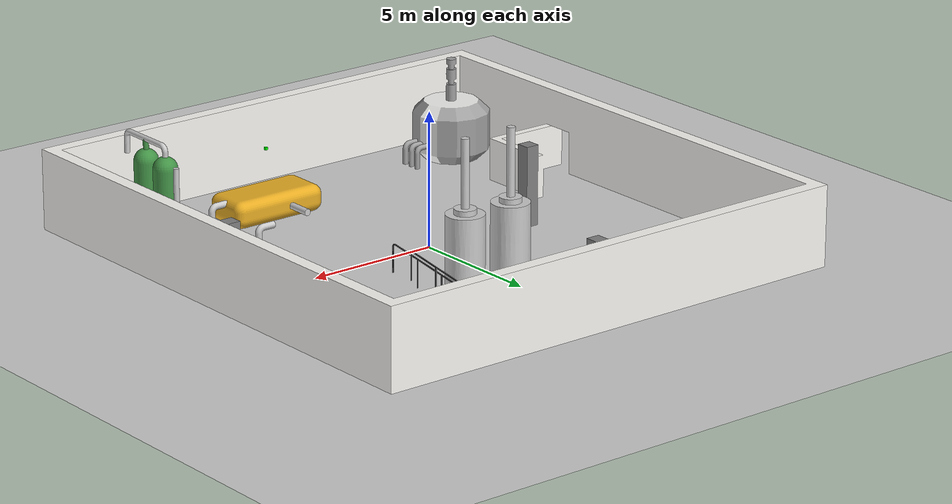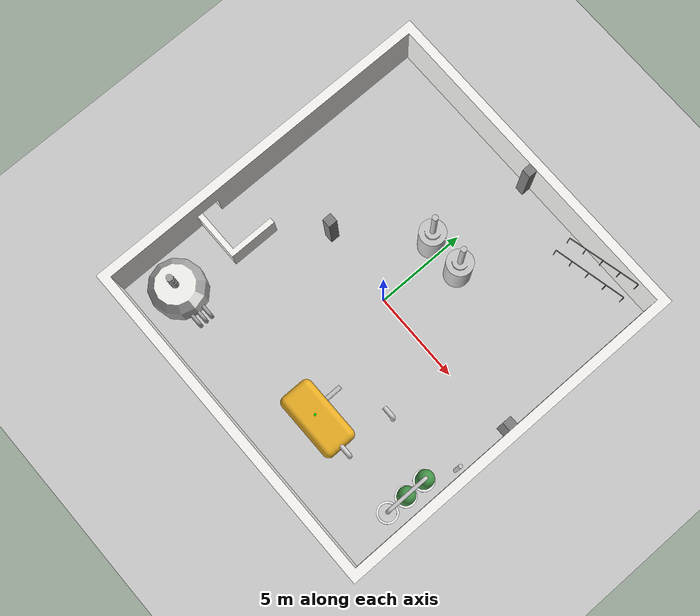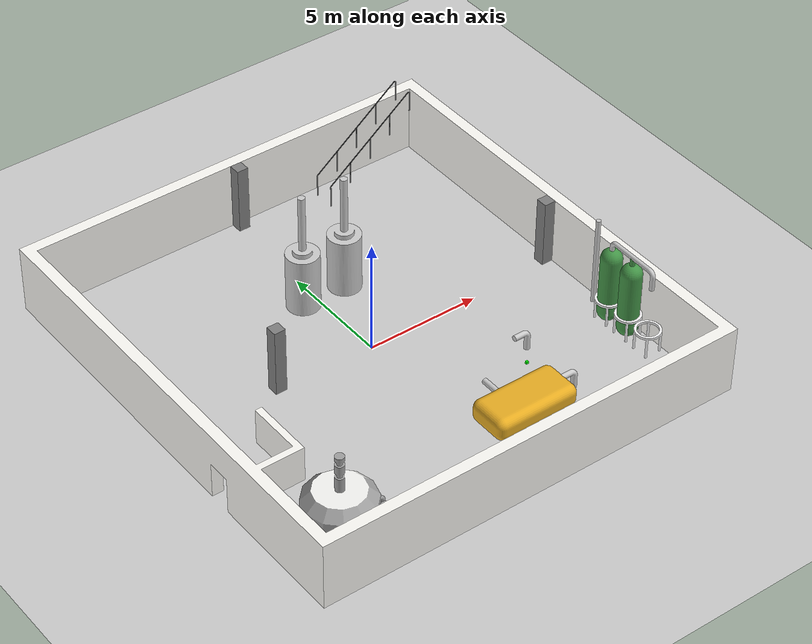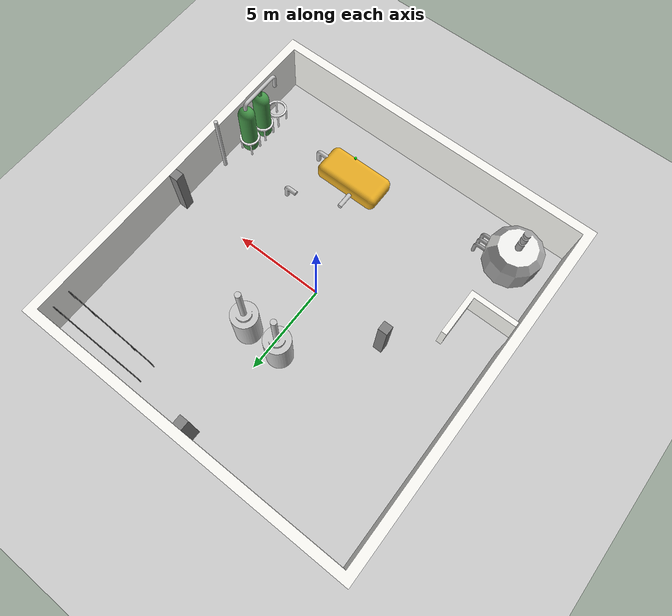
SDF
<sdf version="1.6">
 <world name="default">
  <light name="sun" type="directional">
   <cast_shadows>0</cast_shadows>
   <pose>0 0 10 0 -0 0</pose>
   <diffuse>0.8 0.8 0.8 1</diffuse>
   <specular>0.2 0.2 0.2 1</specular>
   <attenuation>
    <range>1000</range>
    <constant>0.9</constant>
    <linear>0.01</linear>
    <quadratic>0.001</quadratic>
   </attenuation>
   <direction>-0.5 0.1 -0.9</direction>
  </light>
  <include><uri>model://ground_plane</uri></include>
  <gravity>0 0 -9.8</gravity>
  <magnetic_field>6e-06 2.3e-05 -4.2e-05</magnetic_field>
  <atmosphere type="adiabatic"/>
  <physics default="0" name="default_physics" type="ode">
   <max_step_size>0.001</max_step_size>
   <real_time_factor>1</real_time_factor>
   <real_time_update_rate>1000</real_time_update_rate>
  </physics>
  <scene><ambient>0.4 0.4 0.4 1</ambient><background>0.7 0.7 0.7 1</background><shadows>0</shadows></scene>
  <spherical_coordinates>
   <surface_model>EARTH_WGS84</surface_model>
   <latitude_deg>0</latitude_deg>
   <longitude_deg>0</longitude_deg>
   <elevation>0</elevation>
   <heading_deg>0</heading_deg>
  </spherical_coordinates>
  <plugin name="radiation_virtual_sensor" filename="libradiation_virtual_sensor.so">
   <debug>false</debug>
   <air_attenuation_coeff>0.001</air_attenuation_coeff>
  </plugin>
  <model name="radiation_obstacle_walls_boratedConcrete">
   <pose>0 0 1.5 0 0 0</pose>
   <static>true</static>
   <link name="link_">
    <collision name="collision_walls_boratedConcrete">
     <geometry><mesh><uri>model://reactor_room/models/walls_boratedConcrete.dae</uri></mesh></geometry>
    </collision>
    <visual name="visual_walls_boratedConcrete">
     <geometry><mesh><uri>model://reactor_room/models/walls_boratedConcrete.dae</uri></mesh></geometry>
    </visual>
   </link>
   <plugin name="obstacle_plugin" filename="libradiation_obstacle_plugin.so">
    <material_type>boratedConcrete</material_type>
   </plugin>
  </model>
  <model name="radiation_obstacle_tankSet4_stainlessSteel_1">
   <pose>-0.60 3.70 2.6831 0 0 0</pose>
   <static>true</static>
   <link name="link_">
    <collision name="collision_tankSet4_stainlessSteel_1">
     <geometry><mesh><uri>model://reactor_room/models/tankSet4_stainlessSteel_1.dae</uri></mesh></geometry>
    </collision>
    <visual name="visual_tankSet4_stainlessSteel_1">
     <geometry><mesh><uri>model://reactor_room/models/tankSet4_stainlessSteel_1.dae</uri></mesh></geometry>
    </visual>
   </link>
   <plugin name="obstacle_plugin" filename="libradiation_obstacle_plugin.so">
    <material_type>none</material_type>
   </plugin>
  </model>
  <model name="radiation_source_tankSet4_stainlessSteel_1">
   <pose>-0.60 3.70 0.5 0 0 0</pose>
   <static>true</static>
   <link name="link_radiation_source_tankSet4_stainlessSteel_1">
    <visual name="visual_radiation_source_tankSet4_stainlessSteel_1_0">
     <geometry><box><size>0.1 0.1 0.1</size></box></geometry>
     <material><ambient>1 0.0  0 1.0</ambient><diffuse>1 0.0  0 1.0</diffuse></material>
    </visual>
    <visual name="visual_radiation_source_tankSet4_stainlessSteel_1_1">
     <pose>0 0 2.0 0 0 0</pose>
     <geometry><box><size>0.1 0.1 0.1</size></box></geometry>
     <material><ambient>0 1.0  0 1.0</ambient><diffuse>0 1.0  0 1.0</diffuse></material>
    </visual>
   </link>
   <plugin name="radiation_source_plugin" filename="libradiation_source_plugin.so">
    <initial_intensity>500.0</initial_intensity>
    <radius>0.1</radius>
   </plugin>
  </model>
  <model name="radiation_obstacle_tankSet4_stainlessSteel_2">
   <pose>1.4 3.7 2.6831 0 0 0</pose>
   <static>true</static>
   <link name="link_">
    <collision name="collision_tankSet4_stainlessSteel_2">
     <geometry><mesh><uri>model://reactor_room/models/tankSet4_stainlessSteel_2.dae</uri></mesh></geometry>
    </collision>
    <visual name="visual_tankSet4_stainlessSteel_2">
     <geometry><mesh><uri>model://reactor_room/models/tankSet4_stainlessSteel_2.dae</uri></mesh></geometry>
    </visual>
   </link>
   <plugin name="obstacle_plugin" filename="libradiation_obstacle_plugin.so">
    <material_type>none</material_type>
   </plugin>
  </model>
  <model name="radiation_source_tankSet4_stainlessSteel_2">
   <pose>1.4 3.7 0.5 0 0 0</pose>
   <static>true</static>
   <link name="link_radiation_source_tankSet4_stainlessSteel_2">
    <visual name="visual_radiation_source_tankSet4_stainlessSteel_2_0">
     <geometry><box><size>0.1 0.1 0.1</size></box></geometry>
     <material><ambient>1 0.0  0 1.0</ambient><diffuse>1 0.0  0 1.0</diffuse></material>
    </visual>
    <visual name="visual_radiation_source_tankSet4_stainlessSteel_2_1">
     <pose>0 0 2.0 0 0 0</pose>
     <geometry><box><size>0.1 0.1 0.1</size></box></geometry>
     <material><ambient>0 1.0  0 1.0</ambient><diffuse>0 1.0  0 1.0</diffuse></material>
    </visual>
   </link>
   <plugin name="radiation_source_plugin" filename="libradiation_source_plugin.so">
    <initial_intensity>500.0</initial_intensity>
    <radius>0.1</radius>
   </plugin>
  </model>
  <model name="StairsHandrail_aluminium_1">
   <pose>6.3415 8.9706 2.7726 0 0 0</pose>
   <static>true</static>
   <link name="link_">
    <collision name="collision_StairsHandrail_aluminium_1">
     <geometry><mesh><uri>model://reactor_room/models/StairsHandrail_aluminium_1.dae</uri></mesh></geometry>
    </collision>
    <visual name="visual_StairsHandrail_aluminium_1">
     <geometry><mesh><uri>model://reactor_room/models/StairsHandrail_aluminium_1.dae</uri></mesh></geometry>
    </visual>
   </link>
  </model>
  <model name="StairsHandrail_aluminium_2">
   <pose>6.3415 8.0306 2.7726 0 0 0</pose>
   <static>true</static>
   <link name="link_">
    <collision name="collision_StairsHandrail_aluminium_2">
     <geometry><mesh><uri>model://reactor_room/models/StairsHandrail_aluminium_2.dae</uri></mesh></geometry>
    </collision>
    <visual name="visual_StairsHandrail_aluminium_2">
     <geometry><mesh><uri>model://reactor_room/models/StairsHandrail_aluminium_2.dae</uri></mesh></geometry>
    </visual>
   </link>
  </model>
  <model name="radiation_obstacle_tankSet2_stainlessSteel">
   <pose>-5.6383 -7.3995 1.9 0 0 0</pose>
   <static>true</static>
   <link name="link_">
    <collision name="collision_tankSet2_stainlessSteel">
     <geometry><mesh><uri>model://reactor_room/models/tankSet2_stainlessSteel.dae</uri></mesh></geometry>
    </collision>
    <visual name="visual_tankSet2_stainlessSteel">
     <geometry><mesh><uri>model://reactor_room/models/tankSet2_stainlessSteel.dae</uri></mesh></geometry>
    </visual>
   </link>
   <plugin name="obstacle_plugin" filename="libradiation_obstacle_plugin.so">
    <material_type>stainlessSteel</material_type>
   </plugin>
  </model>
  <model name="radiation_obstacle_verticalPipeSet_stainlessSteel_3">
   <pose>8.7 -2.9 2 0 0 0</pose>
   <static>true</static>
   <link name="link_">
    <collision name="collision_verticalPipeSet_stainlessSteel_3">
     <geometry><mesh><uri>model://reactor_room/models/verticalPipeSet_stainlessSteel_3.dae</uri></mesh></geometry>
    </collision>
    <visual name="visual_verticalPipeSet_stainlessSteel_3">
     <geometry><mesh><uri>model://reactor_room/models/verticalPipeSet_stainlessSteel_3.dae</uri></mesh></geometry>
    </visual>
   </link>
   <plugin name="obstacle_plugin" filename="libradiation_obstacle_plugin.so">
    <material_type>stainlessSteel</material_type>
   </plugin>
  </model>
  <model name="radiation_obstacle_tankSet1_stainlessSteel_2">
   <pose>2.4013 -6.35 0.5 0 0 0</pose>
   <static>true</static>
   <link name="link_">
    <collision name="collision_tankSet1_stainlessSteel_2">
     <geometry><mesh><uri>model://reactor_room/models/tankSet1_stainlessSteel_2.dae</uri></mesh></geometry>
    </collision>
    <visual name="visual_tankSet1_stainlessSteel_2">
     <geometry><mesh><uri>model://reactor_room/models/tankSet1_stainlessSteel_2.dae</uri></mesh></geometry>
    </visual>
   </link>
   <plugin name="obstacle_plugin" filename="libradiation_obstacle_plugin.so">
    <material_type>none</material_type>
   </plugin>
  </model>
  <model name="radiation_source_tankSet1_stainlessSteel_2">
   <pose>2.4013 -6.35 0.5 0 0 0</pose>
   <static>true</static>
   <link name="link_radiation_source_tankSet1_stainlessSteel_2">
    <visual name="visual_radiation_source_tankSet1_stainlessSteel_2_0">
     <geometry><box><size>0.1 0.1 0.1</size></box></geometry>
     <material><ambient>1 0.0  0 1.0</ambient><diffuse>1 0.0  0 1.0</diffuse></material>
    </visual>
    <visual name="visual_radiation_source_tankSet1_stainlessSteel_2_1">
     <pose>0 0 2.0 0 0 0</pose>
     <geometry><box><size>0.1 0.1 0.1</size></box></geometry>
     <material><ambient>0 1.0  0 1.0</ambient><diffuse>0 1.0  0 1.0</diffuse></material>
    </visual>
   </link>
   <plugin name="radiation_source_plugin" filename="libradiation_source_plugin.so">
    <initial_intensity>500.0</initial_intensity>
    <radius>0.1</radius>
   </plugin>
  </model>
  <model name="radiation_obstacle_tankSet1_pipework_stainlessSteel_2">
   <pose>1.955 -4.95 0.5 0 0 0</pose>
   <static>true</static>
   <link name="link_">
    <collision name="collision_tankSet1_pipework_stainlessSteel_2">
     <geometry>
      <mesh><uri>model://reactor_room/models/tankSet1_pipework_stainlessSteel_2.dae</uri></mesh>
     </geometry>
    </collision>
    <visual name="visual_tankSet1_pipework_stainlessSteel_2">
     <geometry>
      <mesh><uri>model://reactor_room/models/tankSet1_pipework_stainlessSteel_2.dae</uri></mesh>
     </geometry>
    </visual>
   </link>
   <plugin name="obstacle_plugin" filename="libradiation_obstacle_plugin.so">
    <material_type>stainlessSteel</material_type>
   </plugin>
  </model>
  <model name="radiation_obstacle_tankSet1_pipework_stainlessSteel_3">
   <pose>4.699 -3.5568 0.6892 0 0 0</pose>
   <static>true</static>
   <link name="link_">
    <collision name="collision_tankSet1_pipework_stainlessSteel_3">
     <geometry>
      <mesh><uri>model://reactor_room/models/tankSet1_pipework_stainlessSteel_3.dae</uri></mesh>
     </geometry>
    </collision>
    <visual name="visual_tankSet1_pipework_stainlessSteel_3">
     <geometry>
      <mesh><uri>model://reactor_room/models/tankSet1_pipework_stainlessSteel_3.dae</uri></mesh>
     </geometry>
    </visual>
   </link>
   <plugin name="obstacle_plugin" filename="libradiation_obstacle_plugin.so">
    <material_type>stainlessSteel</material_type>
   </plugin>
  </model>
  <model name="radiation_obstacle_tankSet1_pipework_stainlessSteel_4">
   <pose>4.699 -6.3432 0.6892 0 0 0</pose>
   <static>true</static>
   <link name="link_">
    <collision name="collision_tankSet1_pipework_stainlessSteel_4">
     <geometry>
      <mesh><uri>model://reactor_room/models/tankSet1_pipework_stainlessSteel_4.dae</uri></mesh>
     </geometry>
    </collision>
    <visual name="visual_tankSet1_pipework_stainlessSteel_4">
     <geometry>
      <mesh><uri>model://reactor_room/models/tankSet1_pipework_stainlessSteel_4.dae</uri></mesh>
     </geometry>
    </visual>
   </link>
   <plugin name="obstacle_plugin" filename="libradiation_obstacle_plugin.so">
    <material_type>stainlessSteel</material_type>
   </plugin>
  </model>
  <model name="tankSet3Pipe_stainlessSteel">
   <pose>8.0676 -5.6086 4.077 0 0 0</pose>
   <static>true</static>
   <link name="link_">
    <collision name="collision_tankSet3Pipe_stainlessSteel">
     <geometry><mesh><uri>model://reactor_room/models/tankSet3Pipe_stainlessSteel.dae</uri></mesh></geometry>
    </collision>
    <visual name="visual_tankSet3Pipe_stainlessSteel">
     <geometry><mesh><uri>model://reactor_room/models/tankSet3Pipe_stainlessSteel.dae</uri></mesh></geometry>
    </visual>
   </link>
  </model>
  <model name="radiation_obstacle_tankSet3Tank_stainlessSteel_1">
   <pose>8.07 -4.45 2.0966 0 0 0</pose>
   <static>true</static>
   <link name="link_">
    <collision name="collision_tankSet3Tank_stainlessSteel_1">
     <geometry><mesh><uri>model://reactor_room/models/tankSet3Tank_stainlessSteel_1.dae</uri></mesh></geometry>
    </collision>
    <visual name="visual_tankSet3Tank_stainlessSteel_1">
     <geometry><mesh><uri>model://reactor_room/models/tankSet3Tank_stainlessSteel_1.dae</uri></mesh></geometry>
    </visual>
   </link>
   <plugin name="obstacle_plugin" filename="libradiation_obstacle_plugin.so">
    <material_type>none</material_type>
   </plugin>
  </model>
  <model name="radiation_source_tankSet3Tank_stainlessSteel_1">
   <pose>8.07 -4.45 0.5 0 0 0</pose>
   <static>true</static>
   <link name="link_radiation_source_tankSet3Tank_stainlessSteel_1">
    <visual name="visual_radiation_source_tankSet3Tank_stainlessSteel_1_0">
     <geometry><box><size>0.1 0.1 0.1</size></box></geometry>
     <material><ambient>1 0.0  0 1.0</ambient><diffuse>1 0.0  0 1.0</diffuse></material>
    </visual>
    <visual name="visual_radiation_source_tankSet3Tank_stainlessSteel_1_1">
     <pose>0 0 2.0 0 0 0</pose>
     <geometry><box><size>0.1 0.1 0.1</size></box></geometry>
     <material><ambient>0 1.0  0 1.0</ambient><diffuse>0 1.0  0 1.0</diffuse></material>
    </visual>
   </link>
   <plugin name="radiation_source_plugin" filename="libradiation_source_plugin.so">
    <initial_intensity>500.0</initial_intensity>
    <radius>0.1</radius>
   </plugin>
  </model>
  <model name="radiation_obstacle_tankSet3Tank_stainlessSteel_2">
   <pose>8.07 -5.6 2.0981 0 0 0</pose>
   <static>true</static>
   <link name="link_">
    <collision name="collision_tankSet3Tank_stainlessSteel_2">
     <geometry><mesh><uri>model://reactor_room/models/tankSet3Tank_stainlessSteel_2.dae</uri></mesh></geometry>
    </collision>
    <visual name="visual_tankSet3Tank_stainlessSteel_2">
     <geometry><mesh><uri>model://reactor_room/models/tankSet3Tank_stainlessSteel_2.dae</uri></mesh></geometry>
    </visual>
   </link>
   <plugin name="obstacle_plugin" filename="libradiation_obstacle_plugin.so">
    <material_type>stainlessSteel</material_type>
   </plugin>
  </model>
  <model name="radiation_obstacle_tankSet3Support_stainlessSteel_1">
   <pose>8.07 -4.45 1.1638 0 0 0</pose>
   <static>true</static>
   <link name="link_">
    <collision name="collision_tankSet3Support_stainlessSteel_1">
     <geometry><mesh><uri>model://reactor_room/models/tankSet3Support_stainlessSteel_1.dae</uri></mesh></geometry>
    </collision>
    <visual name="visual_tankSet3Support_stainlessSteel_1">
     <geometry><mesh><uri>model://reactor_room/models/tankSet3Support_stainlessSteel_1.dae</uri></mesh></geometry>
    </visual>
   </link>
   <plugin name="obstacle_plugin" filename="libradiation_obstacle_plugin.so">
    <material_type>stainlessSteel</material_type>
   </plugin>
  </model>
  <model name="radiation_obstacle_tankSet3Support_stainlessSteel_2">
   <pose>8.07 -5.6 1.1638 0 0 0</pose>
   <static>true</static>
   <link name="link_">
    <collision name="collision_tankSet3Support_stainlessSteel_2">
     <geometry><mesh><uri>model://reactor_room/models/tankSet3Support_stainlessSteel_2.dae</uri></mesh></geometry>
    </collision>
    <visual name="visual_tankSet3Support_stainlessSteel_2">
     <geometry><mesh><uri>model://reactor_room/models/tankSet3Support_stainlessSteel_2.dae</uri></mesh></geometry>
    </visual>
   </link>
   <plugin name="obstacle_plugin" filename="libradiation_obstacle_plugin.so">
    <material_type>stainlessSteel</material_type>
   </plugin>
  </model>
  <model name="radiation_obstacle_tankSet3Support_stainlessSteel_3">
   <pose>8.07 -6.75 1.1638 0 0 0</pose>
   <static>true</static>
   <link name="link_">
    <collision name="collision_tankSet3Support_stainlessSteel_3">
     <geometry><mesh><uri>model://reactor_room/models/tankSet3Support_stainlessSteel_3.dae</uri></mesh></geometry>
    </collision>
    <visual name="visual_tankSet3Support_stainlessSteel_3">
     <geometry><mesh><uri>model://reactor_room/models/tankSet3Support_stainlessSteel_3.dae</uri></mesh></geometry>
    </visual>
   </link>
   <plugin name="obstacle_plugin" filename="libradiation_obstacle_plugin.so">
    <material_type>stainlessSteel</material_type>
   </plugin>
  </model>
  <model name="radiation_obstacle_MezzanineSupports_concrete_1">
   <pose>-4.25 0.25 1.5 0 0 0</pose>
   <static>true</static>
   <link name="link_">
    <collision name="collision_MezzanineSupports_concrete_1">
     <geometry><mesh><uri>model://reactor_room/models/MezzanineSupports_concrete_1.dae</uri></mesh></geometry>
    </collision>
    <visual name="visual_MezzanineSupports_concrete_1">
     <geometry><mesh><uri>model://reactor_room/models/MezzanineSupports_concrete_1.dae</uri></mesh></geometry>
    </visual>
   </link>
   <plugin name="obstacle_plugin" filename="libradiation_obstacle_plugin.so">
    <material_type>concrete</material_type>
   </plugin>
  </model>
  <model name="radiation_obstacle_MezzanineSupports_concrete_2">
   <pose>8.75 0.25 1.50 0 0 0</pose>
   <static>true</static>
   <link name="link_">
    <collision name="collision_MezzanineSupports_concrete_2">
     <geometry><mesh><uri>model://reactor_room/models/MezzanineSupports_concrete_2.dae</uri></mesh></geometry>
    </collision>
    <visual name="visual_MezzanineSupports_concrete_2">
     <geometry><mesh><uri>model://reactor_room/models/MezzanineSupports_concrete_2.dae</uri></mesh></geometry>
    </visual>
   </link>
   <plugin name="obstacle_plugin" filename="libradiation_obstacle_plugin.so">
    <material_type>concrete</material_type>
   </plugin>
  </model>
  <model name="radiation_obstacle_MezzanineSupports_concrete_3">
   <pose>0.25 9.25 1.5 0 0 0</pose>
   <static>true</static>
   <link name="link_">
    <collision name="collision_MezzanineSupports_concrete_3">
     <geometry><mesh><uri>model://reactor_room/models/MezzanineSupports_concrete_3.dae</uri></mesh></geometry>
    </collision>
    <visual name="visual_MezzanineSupports_concrete_3">
     <geometry><mesh><uri>model://reactor_room/models/MezzanineSupports_concrete_3.dae</uri></mesh></geometry>
    </visual>
   </link>
   <plugin name="obstacle_plugin" filename="libradiation_obstacle_plugin.so">
    <material_type>concrete</material_type>
   </plugin>
  </model>
 </world>
</sdf>
